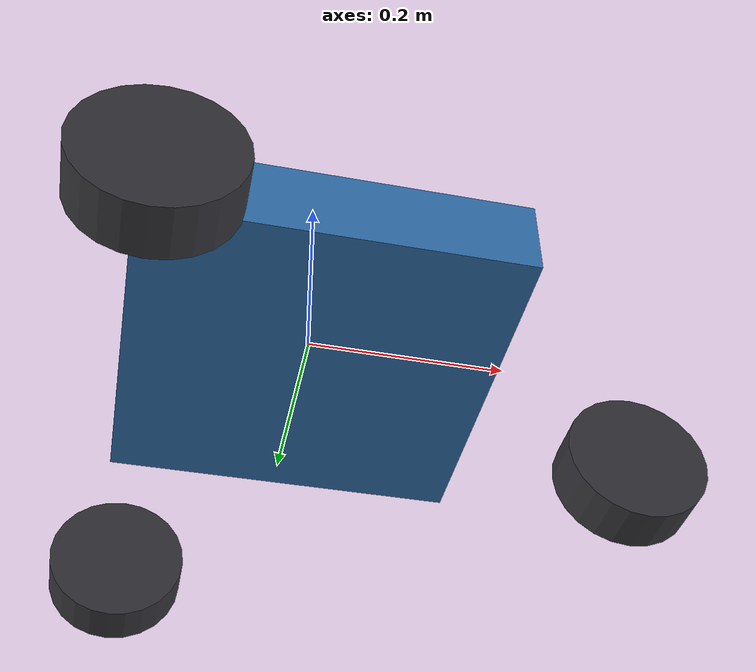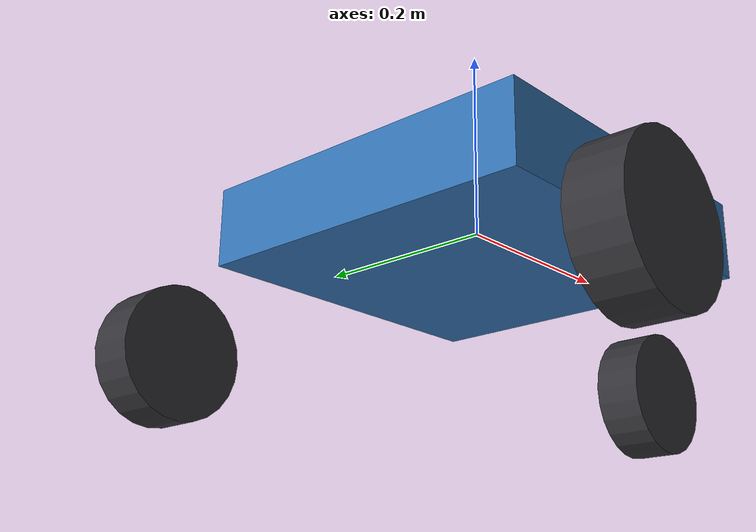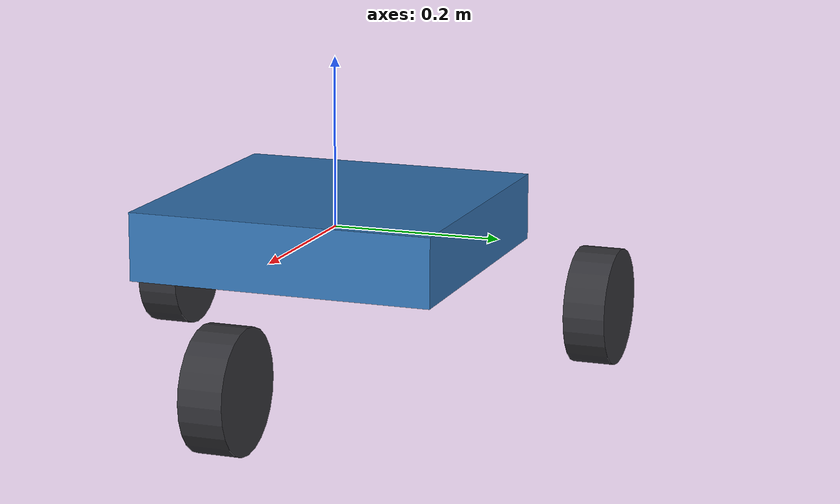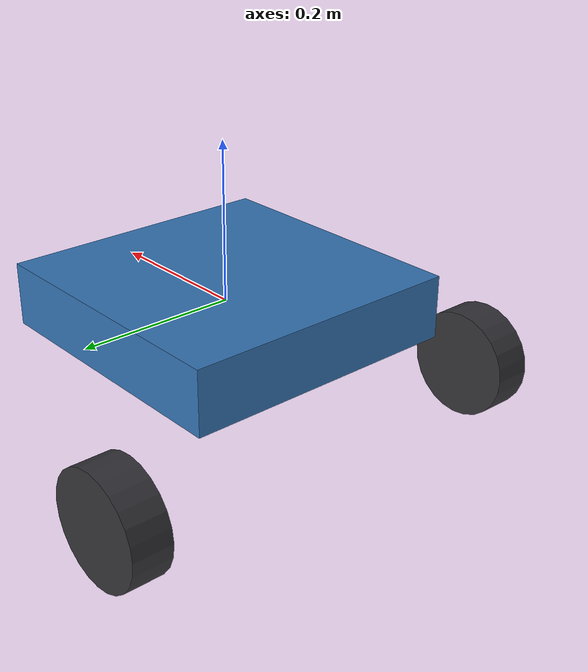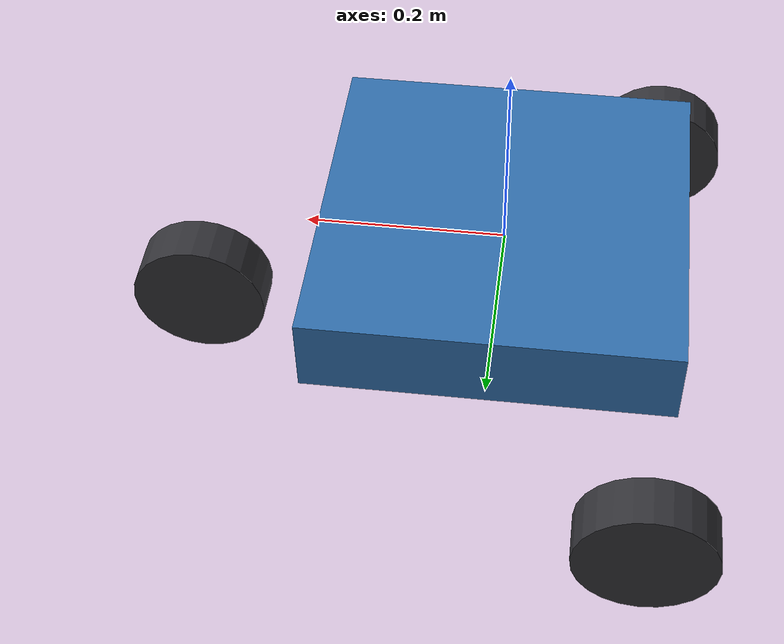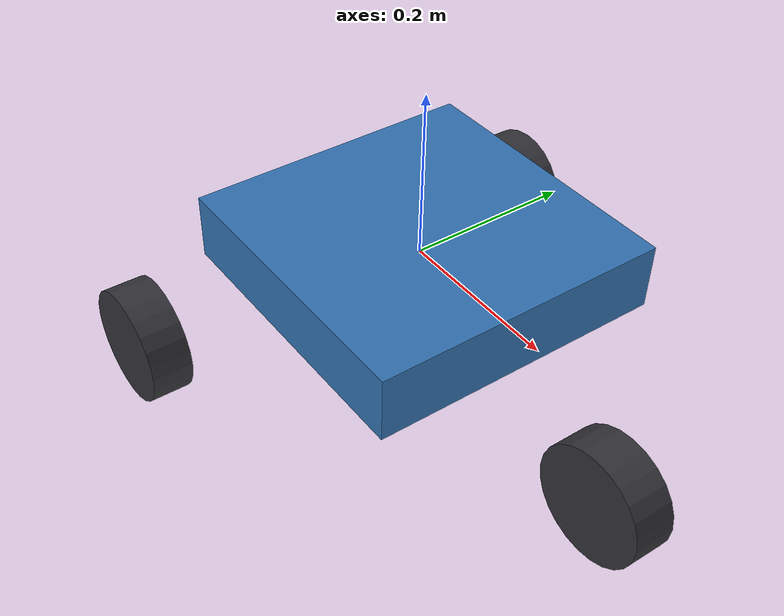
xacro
<?xml version="1.0"?>
<robot name="three_steer_robot" xmlns:xacro="http://www.ros.org/wiki/xacro">
  <!-- 由 launch 传入 controllers.yaml 绝对路径 -->
  <xacro:arg name="controllers_file" default=""/>

  <link name="base_link">
    <inertial>
      <mass value="12.0"/>
      <inertia ixx="0.18" iyy="0.18" izz="0.28" ixy="0" ixz="0" iyz="0"/>
    </inertial>
    <visual>
      <origin xyz="0 0 0" rpy="0 0 0"/>
      <geometry>
        <box size="0.36 0.36 0.08"/>
      </geometry>
      <material name="base_blue">
        <color rgba="0.2 0.45 0.7 1"/>
      </material>
    </visual>
    <collision>
      <origin xyz="0 0 0" rpy="0 0 0"/>
      <geometry>
        <box size="0.36 0.36 0.08"/>
      </geometry>
    </collision>
  </link>

  <!-- 三台舵轮：等边三角形，+X 前向；舵绕 Z，轮绕 Y -->
  <xacro:macro name="steer_wheel" params="prefix tx ty">
    <link name="${prefix}_steer_link">
      <inertial>
        <mass value="0.02"/>
        <inertia ixx="1e-5" iyy="1e-5" izz="1e-5" ixy="0" ixz="0" iyz="0"/>
      </inertial>
    </link>
    <link name="${prefix}_wheel_link">
      <inertial>
        <mass value="0.45"/>
        <inertia ixx="0.0012" iyy="0.0006" izz="0.0012" ixy="0" ixz="0" iyz="0"/>
      </inertial>
      <visual>
        <origin xyz="0 0 0" rpy="1.57079632679 0 0"/>
        <geometry>
          <cylinder radius="0.07" length="0.05"/>
        </geometry>
        <material name="wheel_grey">
          <color rgba="0.2 0.2 0.22 1"/>
        </material>
      </visual>
      <collision>
        <origin xyz="0 0 0" rpy="1.57079632679 0 0"/>
        <geometry>
          <cylinder radius="0.07" length="0.05"/>
        </geometry>
      </collision>
    </link>
    <joint name="${prefix}_steer_joint" type="revolute">
      <origin xyz="${tx} ${ty} -0.11" rpy="0 0 0"/>
      <parent link="base_link"/>
      <child link="${prefix}_steer_link"/>
      <axis xyz="0 0 1"/>
      <limit effort="80" velocity="3.0" lower="-3.14159" upper="3.14159"/>
    </joint>
    <joint name="${prefix}_wheel_joint" type="continuous">
      <origin xyz="0 0 0" rpy="0 0 0"/>
      <parent link="${prefix}_steer_link"/>
      <child link="${prefix}_wheel_link"/>
      <axis xyz="0 1 0"/>
      <limit effort="40" velocity="40"/>
    </joint>
  </xacro:macro>

  <xacro:steer_wheel prefix="front" tx="0.32" ty="0"/>
  <xacro:steer_wheel prefix="left" tx="-0.16" ty="0.277128"/>
  <xacro:steer_wheel prefix="right" tx="-0.16" ty="-0.277128"/>

  <ros2_control name="GazeboSystem" type="system">
    <hardware>
      <plugin>gazebo_ros2_control/GazeboSystem</plugin>
    </hardware>
    <joint name="front_steer_joint">
      <command_interface name="position"/>
      <state_interface name="position"/>
      <state_interface name="velocity"/>
    </joint>
    <joint name="left_steer_joint">
      <command_interface name="position"/>
      <state_interface name="position"/>
      <state_interface name="velocity"/>
    </joint>
    <joint name="right_steer_joint">
      <command_interface name="position"/>
      <state_interface name="position"/>
      <state_interface name="velocity"/>
    </joint>
    <joint name="front_wheel_joint">
      <command_interface name="velocity"/>
      <state_interface name="velocity"/>
    </joint>
    <joint name="left_wheel_joint">
      <command_interface name="velocity"/>
      <state_interface name="velocity"/>
    </joint>
    <joint name="right_wheel_joint">
      <command_interface name="velocity"/>
      <state_interface name="velocity"/>
    </joint>
  </ros2_control>

  <gazebo>
    <plugin filename="libgazebo_ros2_control.so" name="gazebo_ros2_control">
      <parameters>$(arg controllers_file)</parameters>
    </plugin>
  </gazebo>

  <gazebo reference="base_link">
    <material>Gazebo/Blue</material>
  </gazebo>
  <gazebo reference="front_wheel_link">
    <mu1>1.2</mu1>
    <mu2>1.0</mu2>
    <material>Gazebo/DarkGrey</material>
  </gazebo>
  <gazebo reference="left_wheel_link">
    <mu1>1.2</mu1>
    <mu2>1.0</mu2>
    <material>Gazebo/DarkGrey</material>
  </gazebo>
  <gazebo reference="right_wheel_link">
    <mu1>1.2</mu1>
    <mu2>1.0</mu2>
    <material>Gazebo/DarkGrey</material>
  </gazebo>
</robot>
